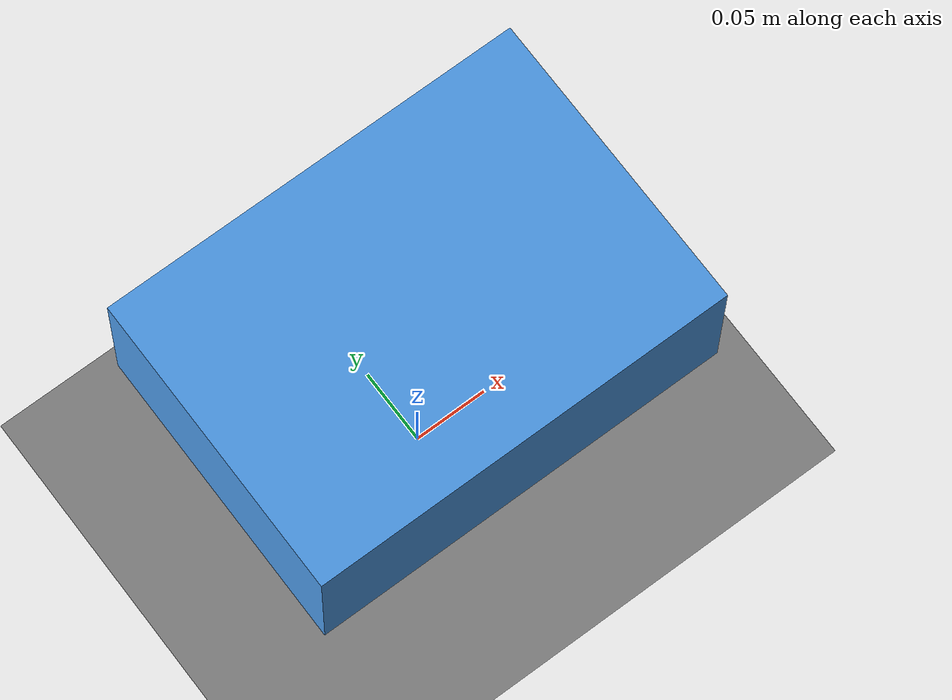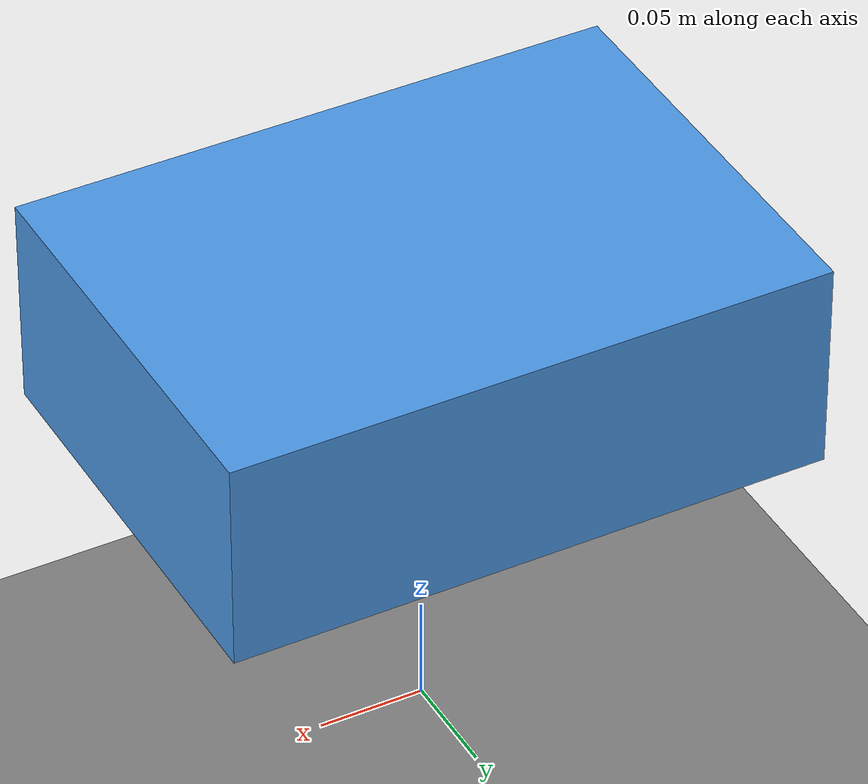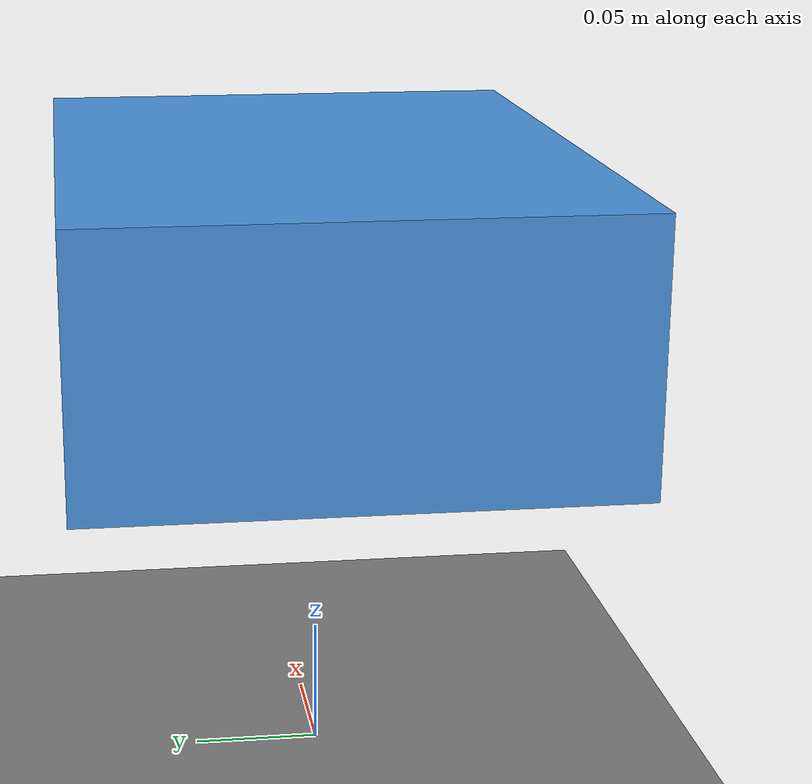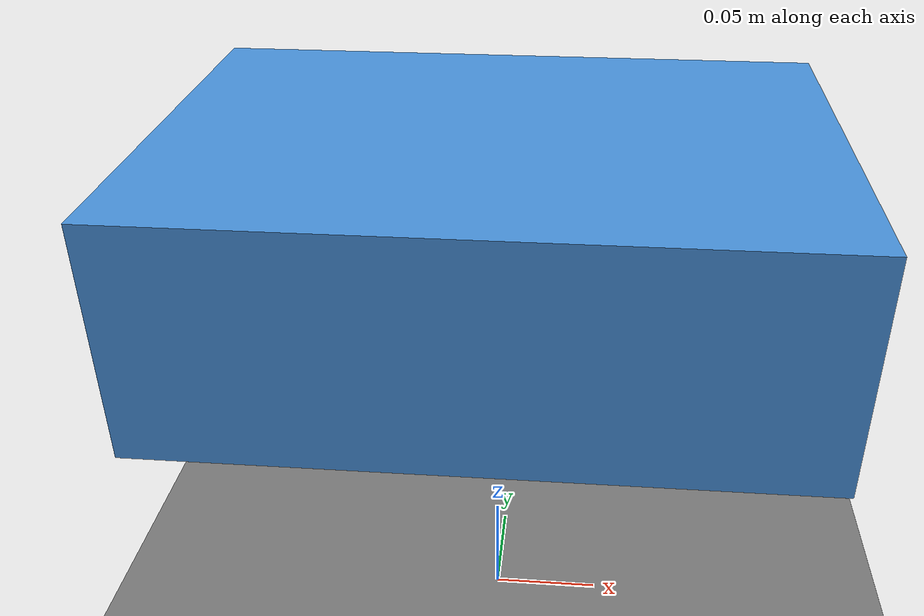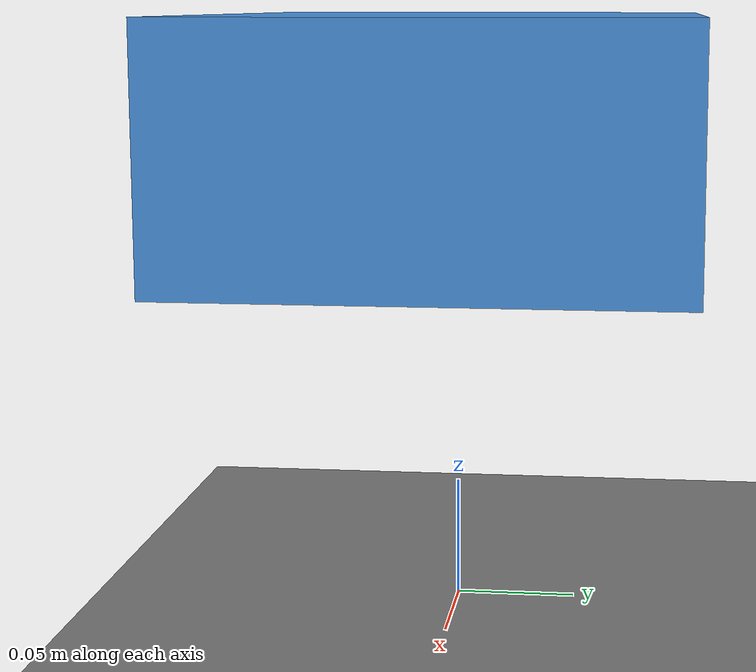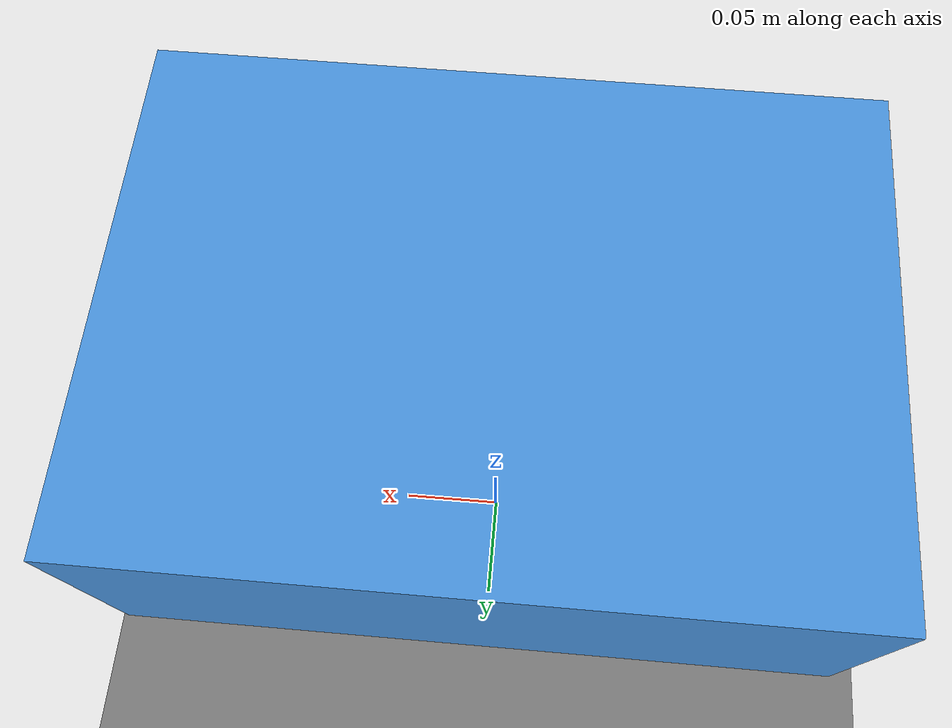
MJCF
<mujoco model="payload_inertia_task">
  <compiler angle="degree"/>
  <option gravity="0 0 -9.81" timestep="0.002"/>
  <worldbody>
    <geom name="floor" type="plane" size="2 2 0.1"/>
    <body name="payload" pos="0 0 0.20">
      <freejoint/>
      <!-- Replace these provisional physical properties with the task contract. -->
      <inertial pos="0 0 0" mass="1.0" diaginertia="0.004 0.008 0.010"/>
      <geom name="payload_collision" type="box" size="0.14 0.10 0.05" contype="1" conaffinity="1" rgba="0.3 0.6 0.9 1"/>
    </body>
  </worldbody>
</mujoco>
